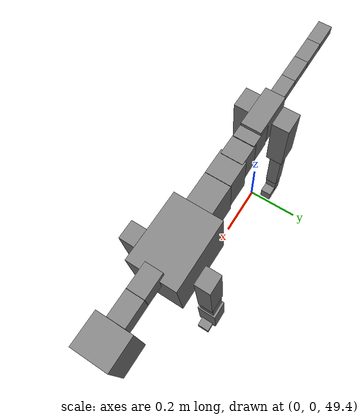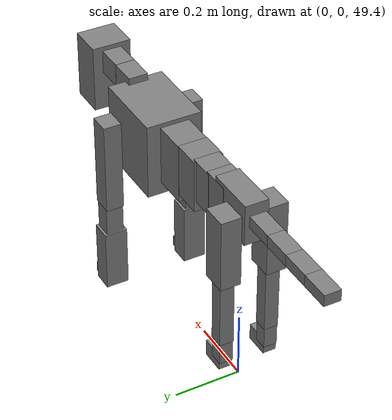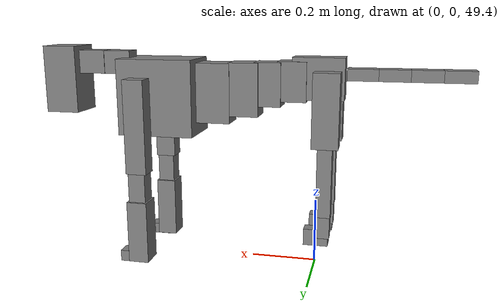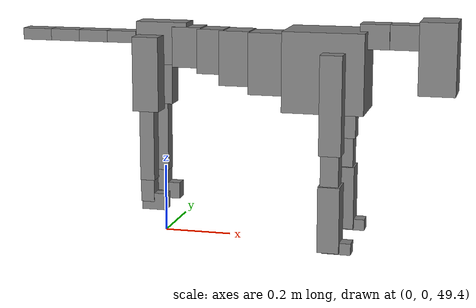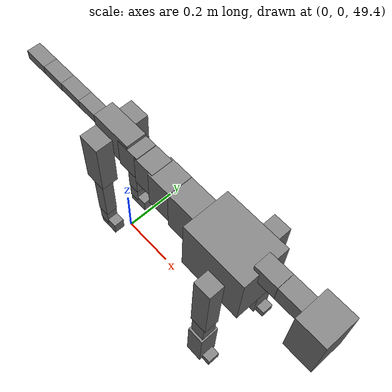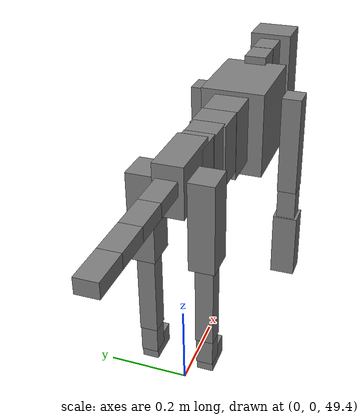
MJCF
<mujoco model="dog">

    <default>
        <joint armature="0.02" stiffness="1" damping="0.2" limited="true"/>
        <geom condim="3" friction="1 0.05 0.05" margin="0.01"/>
        <motor ctrllimited="true" ctrlrange="-1.0 1.0" forcelimited="true" gear="50"/>
    </default>

    <compiler inertiafromgeom="true" angle="radian"/>

    <option timestep="0.016" iterations="50" tolerance="1e-10" solver="Newton" jacobian="dense" cone="pyramidal"/>

    <size nconmax="20000" njmax="60000" nstack="5000000"/>
    <visual>
        <map force="0.1" zfar="30"/>
        <rgba haze="0.15 0.25 0.35 1"/>
        <quality shadowsize="2048"/>
        <global offwidth="800" offheight="800"/>
    </visual>

    <asset>
        <texture type="skybox" builtin="gradient" rgb1="0.3 0.5 0.7" rgb2="0 0 0" width="512" height="512"/>
        <texture name="texplane" type="2d" builtin="checker" rgb1=".2 .3 .4" rgb2=".1 0.15 0.2" width="512" height="512"
                 mark="cross" markrgb=".8 .8 .8"/>
        <texture name="texgeom" type="cube" builtin="flat" mark="cross" width="127" height="1278" rgb1="0.8 0.6 0.4"
                 rgb2="0.8 0.6 0.4" markrgb="1 1 1" random="0.01"/>

        <material name="matplane" reflectance="0.3" texture="texplane" texrepeat="1 1" texuniform="true"/>
        <material name="matgeom" texture="texgeom" texuniform="true" rgba="0.8 0.6 .4 1"/>
    </asset>

    <worldbody>
        <geom name="floor" pos="0 0 0" size="0 0 .25" type="plane" material="matplane" condim="3"/>

        <light directional="false" diffuse=".2 .2 .2" specular="0 0 0" pos="0 0 5" dir="0 0 -1" castshadow="false"/>
        <light mode="targetbodycom" target="torso" directional="false" diffuse=".8 .8 .8" specular="0.3 0.3 0.3"
               pos="0 0 4.0" dir="0 0 -1"/>

        <body name="root" pos="0 0 50">
            <freejoint name="root_1"/>
            <geom type="box" pos="0 0 -0.02" size="0.0774  0.0358  0.063" density="2030"/>

            <body name="spine1" pos="0.054 0 0">
                <joint name="spine1_y" axis="0 1 0" range="0 0.7" limited="true"/>
                <geom type="box" pos="0.02375 0 -0.03" size="0.04375  0.0375  0.05985" density="2030"/>

                <body name="spine2" pos="0.0612 0 0">
                    <joint name="spine2_y" axis="0 1 0" range="-0.15 0.15" limited="true"/>
                    <geom type="box" pos="0.03555  0  -0.04" size="0.04055  0.039  0.06615" density="2030"/>

                    <body name="spine3" pos="0.0730 0 0">
                        <joint name="spine3_y" axis="0 1 0" range="-0.15 0.15" limited="true"/>
                        <geom type="box" pos="0.03555  0  -0.057" size="0.04555  0.0445  0.081" density="2030"/>

                        <body name="spine4" pos="0.0780 0 0">
                            <joint name="spine4_y" axis="0 1 0" range="-0.15 0.15" limited="true"/>
                            <geom type="box" pos="0.05265  0  -0.07" size="0.05265  0.045  0.09135" density="2030"/>

                            <body name="torso" pos="0.1082 0 0">
                                <joint name="torso_y" axis="0 1 0" range="-0.15 0.15" limited="true"/>
                                <geom type="box" pos="0.11925  0  -0.085" size="0.11925  0.085  0.11745"
                                      density="2030"/>

                                <body name="neck1" pos="0.2160  0   0.0180">
                                    <joint name="neck1_y" axis="0 1 0" range="-1.2  -1" limited="true"/>
                                    <geom type="box" pos="0.0423  0  0" size="0.0423  0.03  0.036" density="2325"/>

                                    <body name="neck2" pos="0.0853  0  0">
                                        <joint name="neck2_y" axis="0 1 0" range="0.1  0" limited="true"/>
                                        <geom type="box" pos="0.0423  0  0" size="0.0423  0.03  0.036" density="2325"/>

                                        <body name="head" pos="0.0853  0  0">
                                            <joint name="head_y" axis="0 1 0" range="-0.3  -0.2" limited="true"/>
                                            <geom type="box" pos="0.0531  0  -0.055" size="0.0531  0.06  0.1044"
                                                  density="4030"/>

                                        </body>
                                    </body>
                                </body>

                                <body name="front_shoulder" pos="0.156  0   -0.0480">
                                    <joint name="front_shoulder_y" axis="0 1 0" range="-1 1.5" limited="true"/>
                                    <geom type="box" pos="0 0.13 -0.1165" size="0.0320  0.0273  0.1432" density="1158"/>
                                    <geom type="box" pos="0 -0.13 -0.1165" size="0.0320  0.0273  0.1432"
                                          density="1158"/>

                                    <body name="front_elbow" pos="0  0  -0.2331">
                                        <joint name="front_elbow_y" axis="0 1 0" range="-2 0" limited="true"/>
                                        <geom type="box" pos="0 0.13 -0.0638" size="0.0262  0.0268  0.0638"
                                              density="1081"/>
                                        <geom type="box" pos="0 -0.13 -0.0638" size="0.0262  0.0268  0.0638"
                                              density="1081"/>

                                        <body name="front_wrist" pos="0  0  -0.1275">
                                            <joint name="front_wrist_y" axis="0 1 0" range="-0.2 0" limited="true"/>
                                            <geom type="box" pos="0 0.13 -0.0829" size="0.0314  0.0349  0.0960"
                                                  density="1664"/>
                                            <geom type="box" pos="0 -0.13 -0.0829" size="0.0314  0.0349  0.0960"
                                                  density="1664"/>

                                            <body name="front_finger_end" pos="0  0  -0.1657">
                                                <joint name="front_finger_y" axis="0 1 0" range="-0.4 1"
                                                       limited="true"/>
                                                <geom type="box" pos="0.0225  0.13  -0.0019"
                                                      size="0.0413  0.0225  0.0169" density="1515"/>
                                                <geom type="box" pos="0.0225  -0.13  -0.0019"
                                                      size="0.0413  0.0225  0.0169" density="1515"/>

                                            </body>

                                        </body>
                                    </body>
                                </body>

                            </body>
                        </body>
                    </body>
                </body>
            </body>

            <body name="back_hip" pos="-0.03 0 -0.018">
                <joint name="back_hip_y" axis="0 1 0" range="-1.5 0.3" limited="true"/>
                <geom type="box" pos="0 0.07 -0.0874" size="0.0392  0.0308  0.1102" density="1154"/>
                <geom type="box" pos="0 -0.07 -0.0874" size="0.0392  0.0308  0.1102" density="1154"/>

                <body name="back_knee" pos="0  0  -0.1747">
                    <joint name="back_knee_y" axis="0 1 0" range="0 2.8" limited="true"/>
                    <geom type="box" pos="0 0.07 -0.1083" size="0.0218  0.0215  0.1239" density="1227"/>
                    <geom type="box" pos="0 -0.07 -0.1083" size="0.0218  0.0215  0.1239" density="1227"/>

                    <body name="back_ankle" pos="0  0  -0.2167">
                        <joint name="back_ankle_y" axis="0 1 0" range="-2.2 0" limited="true"/>
                        <geom type="box" pos="0 0.07 -0.0350" size="0.0203  0.0203  0.0463" density="1284"/>
                        <geom type="box" pos="0 -0.07 -0.0350" size="0.0203  0.0203  0.0463" density="1284"/>

                        <body name="back_toe_end" pos="0  0  -0.0701">
                            <joint name="back_toe_y" axis="0 1 0" range="-0.4 1" limited="true"/>
                            <geom type="box" pos="0.0200  0.07  -0.0099" size="0.0367  0.0200  0.0249" density="1515"/>
                            <geom type="box" pos="0.0200  -0.07  -0.0099" size="0.0367  0.0200  0.0249" density="1515"/>

                        </body>
                    </body>
                </body>
            </body>

            <body name="tail1" pos="-0.074 0 -0.006">
                <joint name="tail1_y" axis="0 1 0" range="-0.2 0.2" limited="true"/>
                <geom type="box" pos="-0.0536  0  0" size="0.045  0.025  0.0175" density="1587"/>

                <body name="tail2" pos="-0.09 0 0">
                    <joint name="tail2_y" axis="0 1 0" range="-0.2 0.2" limited="true"/>
                    <geom type="box" pos="-0.0536  0  0" size="0.045  0.025  0.0175" density="1587"/>

                    <body name="tail3" pos="-0.09 0 0">
                        <joint name="tail3_y" axis="0 1 0" range="-0.2 0.2" limited="true"/>
                        <geom type="box" pos="-0.0536  0  0" size="0.045  0.025  0.0175" density="1587"/>

                        <body name="tail4" pos="-0.09 0 0">
                            <joint name="tail4_y" axis="0 1 0" range="-0.2 0.2" limited="true"/>
                            <geom type="box" pos="-0.0536  0  0" size="0.045  0.025  0.0175" density="1587"/>

                        </body>
                    </body>
                </body>
            </body>
        </body>
    </worldbody>

    <actuator>
        <motor joint="spine1_y" forcerange="-150 150     "/>
        <motor joint="spine2_y" forcerange="-150 150     "/>
        <motor joint="spine3_y" forcerange="-150 150     "/>
        <motor joint="spine4_y" forcerange="-150 150     "/>
        <motor joint="torso_y" forcerange="-150 150     "/>
        <motor joint="neck1_y" forcerange="-100 100       "/>
        <motor joint="neck2_y" forcerange="-100 100       "/>
        <motor joint="head_y" forcerange="-150 150       "/>
        <motor joint="front_shoulder_y" forcerange="-107.73 174.60"/>
        <motor joint="front_elbow_y" forcerange="-156.02 138.91"/>
        <motor joint="front_wrist_y" forcerange="-149.47 129.88"/>
        <motor joint="front_finger_y" forcerange="-20.82 59.40"/>
        <motor joint="back_hip_y" forcerange="-324.43 285.75"/>
        <motor joint="back_knee_y" forcerange="-237.34 275.72"/>
        <motor joint="back_angle_y" forcerange="-166.23 58.44"/>
        <motor joint="back_toe_y" forcerange="-25.72 54.51"/>
        <motor joint="tail1_y" forcerange="-50 50     "/>
        <motor joint="tail2_y" forcerange="-50 50     "/>
        <motor joint="tail3_y" forcerange="-50 50     "/>
        <motor joint="tail4_y" forcerange="-50 50     "/>
    </actuator>
</mujoco>
